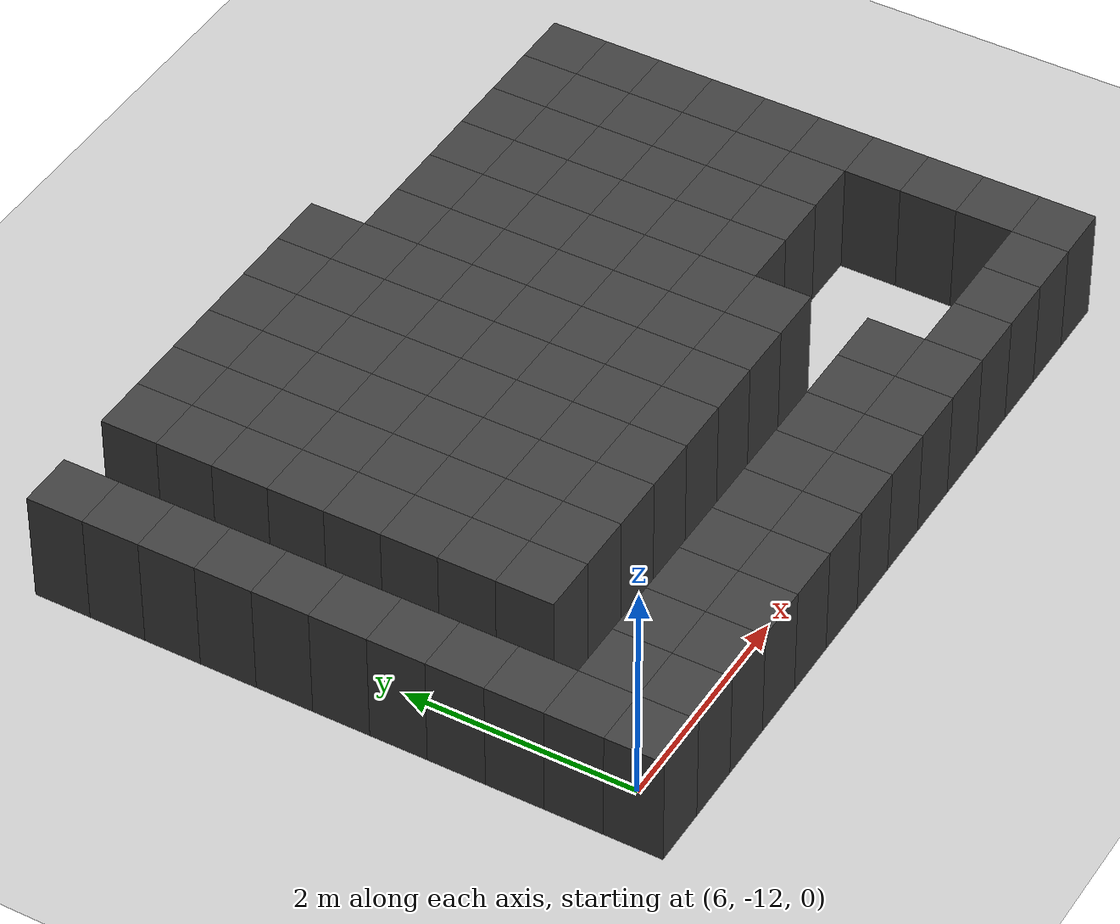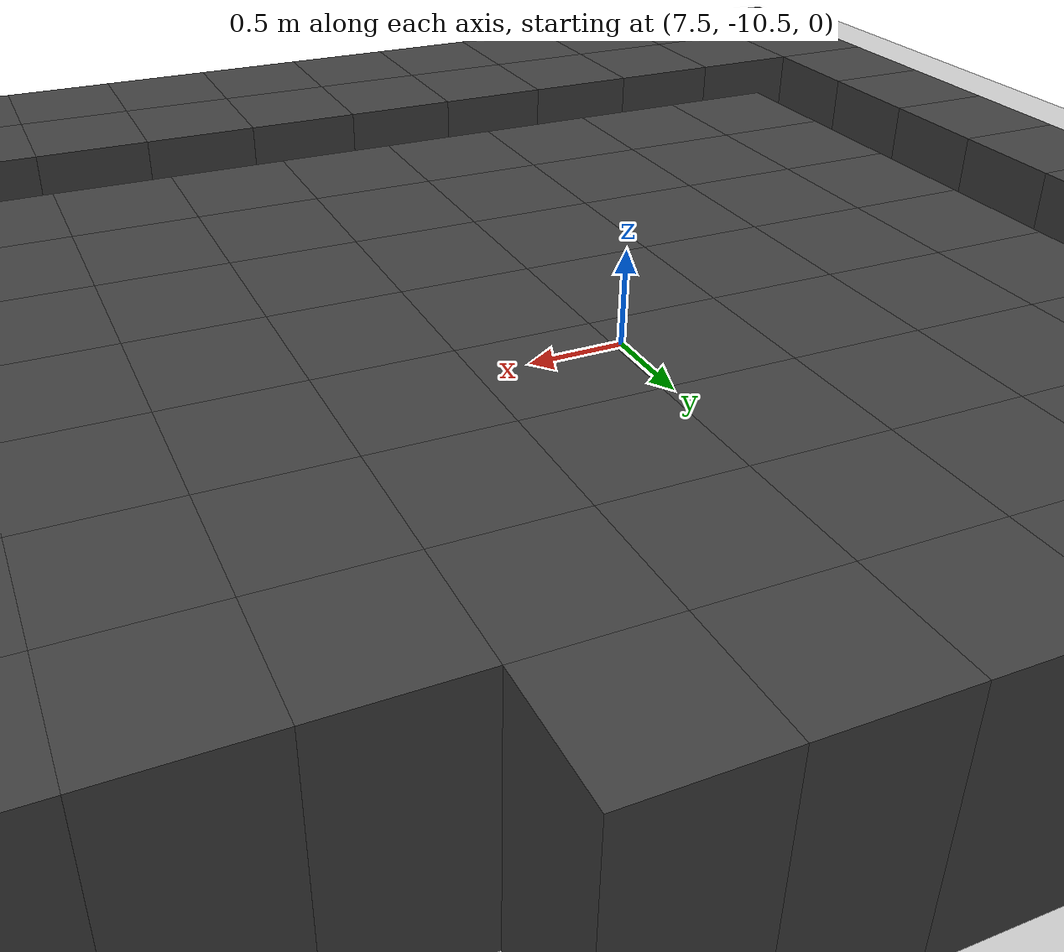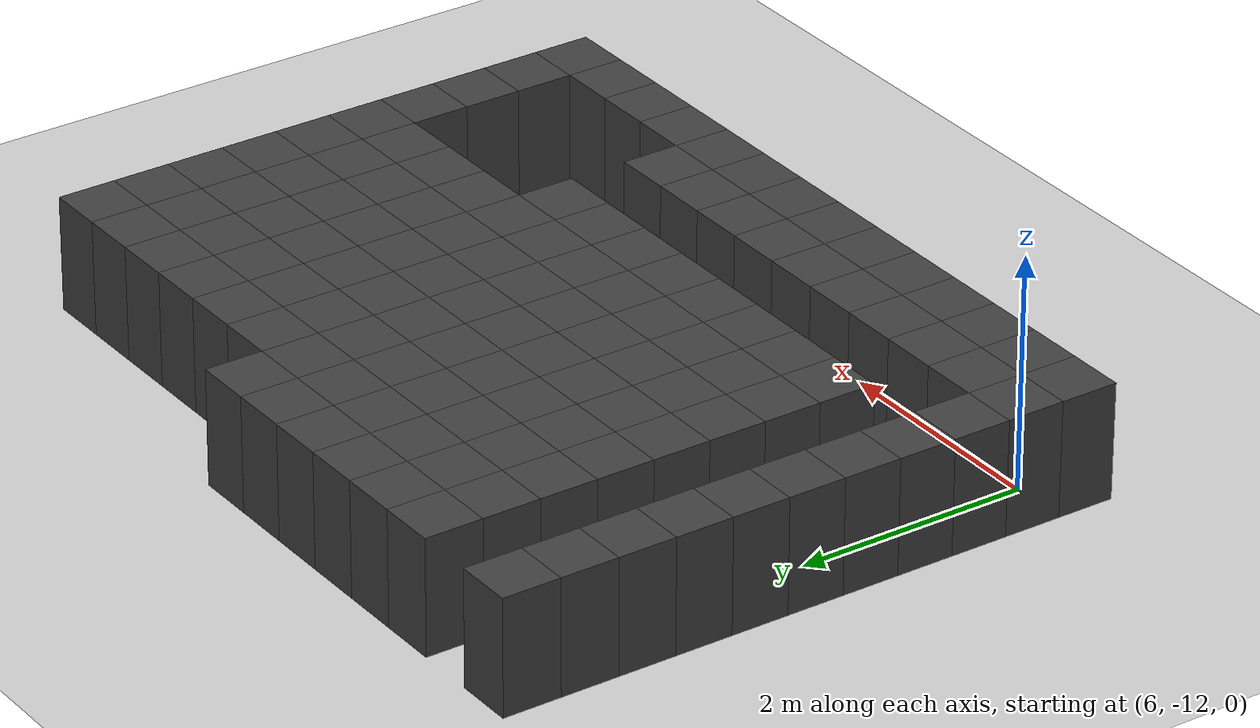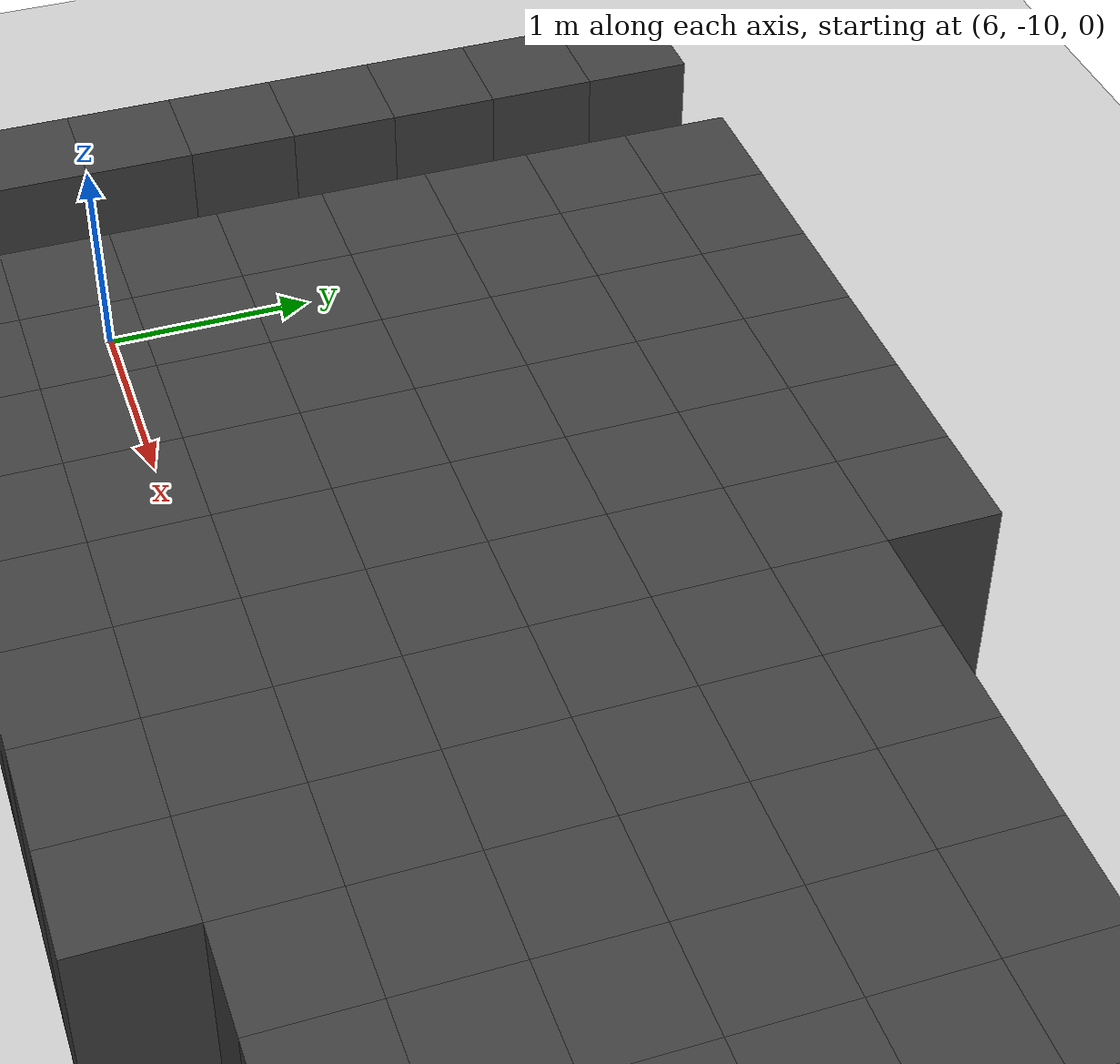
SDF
<sdf version="1.7">
 <world name="map_13820">
  <model name="ground_plane">
   <static>true</static>
   <link name="link">
    <collision name="collision">
     <geometry><plane><normal>0 0 1</normal><size>200 200</size></plane></geometry>
    </collision>
    <visual name="visual">
     <geometry><plane><normal>0 0 1</normal><size>200 200</size></plane></geometry>
     <material><ambient>0.8 0.8 0.8 1</ambient><diffuse>0.8 0.8 0.8 1</diffuse></material>
    </visual>
   </link>
  </model>
  <model name="maze_environment">
   <static>true</static>
   <link name="wall_1369">
    <pose>5.750 -7.250 0.500 0 0 0</pose>
    <collision name="col"><geometry><box><size>0.5 0.5 1.0</size></box></geometry></collision>
    <visual name="vis">
     <geometry><box><size>0.5 0.5 1.0</size></box></geometry>
     <material><ambient>0.15 0.15 0.15 1</ambient><diffuse>0.25 0.25 0.25 1</diffuse></material>
    </visual>
   </link>
   <link name="wall_1370">
    <pose>6.750 -7.250 0.500 0 0 0</pose>
    <collision name="col"><geometry><box><size>0.5 0.5 1.0</size></box></geometry></collision>
    <visual name="vis">
     <geometry><box><size>0.5 0.5 1.0</size></box></geometry>
     <material><ambient>0.15 0.15 0.15 1</ambient><diffuse>0.25 0.25 0.25 1</diffuse></material>
    </visual>
   </link>
   <link name="wall_1371">
    <pose>7.250 -7.250 0.500 0 0 0</pose>
    <collision name="col"><geometry><box><size>0.5 0.5 1.0</size></box></geometry></collision>
    <visual name="vis">
     <geometry><box><size>0.5 0.5 1.0</size></box></geometry>
     <material><ambient>0.15 0.15 0.15 1</ambient><diffuse>0.25 0.25 0.25 1</diffuse></material>
    </visual>
   </link>
   <link name="wall_1372">
    <pose>7.750 -7.250 0.500 0 0 0</pose>
    <collision name="col"><geometry><box><size>0.5 0.5 1.0</size></box></geometry></collision>
    <visual name="vis">
     <geometry><box><size>0.5 0.5 1.0</size></box></geometry>
     <material><ambient>0.15 0.15 0.15 1</ambient><diffuse>0.25 0.25 0.25 1</diffuse></material>
    </visual>
   </link>
   <link name="wall_1373">
    <pose>8.250 -7.250 0.500 0 0 0</pose>
    <collision name="col"><geometry><box><size>0.5 0.5 1.0</size></box></geometry></collision>
    <visual name="vis">
     <geometry><box><size>0.5 0.5 1.0</size></box></geometry>
     <material><ambient>0.15 0.15 0.15 1</ambient><diffuse>0.25 0.25 0.25 1</diffuse></material>
    </visual>
   </link>
   <link name="wall_1374">
    <pose>8.750 -7.250 0.500 0 0 0</pose>
    <collision name="col"><geometry><box><size>0.5 0.5 1.0</size></box></geometry></collision>
    <visual name="vis">
     <geometry><box><size>0.5 0.5 1.0</size></box></geometry>
     <material><ambient>0.15 0.15 0.15 1</ambient><diffuse>0.25 0.25 0.25 1</diffuse></material>
    </visual>
   </link>
   <link name="wall_1375">
    <pose>9.250 -7.250 0.500 0 0 0</pose>
    <collision name="col"><geometry><box><size>0.5 0.5 1.0</size></box></geometry></collision>
    <visual name="vis">
     <geometry><box><size>0.5 0.5 1.0</size></box></geometry>
     <material><ambient>0.15 0.15 0.15 1</ambient><diffuse>0.25 0.25 0.25 1</diffuse></material>
    </visual>
   </link>
   <link name="wall_1418">
    <pose>5.750 -7.750 0.500 0 0 0</pose>
    <collision name="col"><geometry><box><size>0.5 0.5 1.0</size></box></geometry></collision>
    <visual name="vis">
     <geometry><box><size>0.5 0.5 1.0</size></box></geometry>
     <material><ambient>0.15 0.15 0.15 1</ambient><diffuse>0.25 0.25 0.25 1</diffuse></material>
    </visual>
   </link>
   <link name="wall_1419">
    <pose>6.750 -7.750 0.500 0 0 0</pose>
    <collision name="col"><geometry><box><size>0.5 0.5 1.0</size></box></geometry></collision>
    <visual name="vis">
     <geometry><box><size>0.5 0.5 1.0</size></box></geometry>
     <material><ambient>0.15 0.15 0.15 1</ambient><diffuse>0.25 0.25 0.25 1</diffuse></material>
    </visual>
   </link>
   <link name="wall_1420">
    <pose>7.250 -7.750 0.500 0 0 0</pose>
    <collision name="col"><geometry><box><size>0.5 0.5 1.0</size></box></geometry></collision>
    <visual name="vis">
     <geometry><box><size>0.5 0.5 1.0</size></box></geometry>
     <material><ambient>0.15 0.15 0.15 1</ambient><diffuse>0.25 0.25 0.25 1</diffuse></material>
    </visual>
   </link>
   <link name="wall_1421">
    <pose>7.750 -7.750 0.500 0 0 0</pose>
    <collision name="col"><geometry><box><size>0.5 0.5 1.0</size></box></geometry></collision>
    <visual name="vis">
     <geometry><box><size>0.5 0.5 1.0</size></box></geometry>
     <material><ambient>0.15 0.15 0.15 1</ambient><diffuse>0.25 0.25 0.25 1</diffuse></material>
    </visual>
   </link>
   <link name="wall_1422">
    <pose>8.250 -7.750 0.500 0 0 0</pose>
    <collision name="col"><geometry><box><size>0.5 0.5 1.0</size></box></geometry></collision>
    <visual name="vis">
     <geometry><box><size>0.5 0.5 1.0</size></box></geometry>
     <material><ambient>0.15 0.15 0.15 1</ambient><diffuse>0.25 0.25 0.25 1</diffuse></material>
    </visual>
   </link>
   <link name="wall_1423">
    <pose>8.750 -7.750 0.500 0 0 0</pose>
    <collision name="col"><geometry><box><size>0.5 0.5 1.0</size></box></geometry></collision>
    <visual name="vis">
     <geometry><box><size>0.5 0.5 1.0</size></box></geometry>
     <material><ambient>0.15 0.15 0.15 1</ambient><diffuse>0.25 0.25 0.25 1</diffuse></material>
    </visual>
   </link>
   <link name="wall_1424">
    <pose>9.250 -7.750 0.500 0 0 0</pose>
    <collision name="col"><geometry><box><size>0.5 0.5 1.0</size></box></geometry></collision>
    <visual name="vis">
     <geometry><box><size>0.5 0.5 1.0</size></box></geometry>
     <material><ambient>0.15 0.15 0.15 1</ambient><diffuse>0.25 0.25 0.25 1</diffuse></material>
    </visual>
   </link>
   <link name="wall_1425">
    <pose>9.750 -7.750 0.500 0 0 0</pose>
    <collision name="col"><geometry><box><size>0.5 0.5 1.0</size></box></geometry></collision>
    <visual name="vis">
     <geometry><box><size>0.5 0.5 1.0</size></box></geometry>
     <material><ambient>0.15 0.15 0.15 1</ambient><diffuse>0.25 0.25 0.25 1</diffuse></material>
    </visual>
   </link>
   <link name="wall_1426">
    <pose>10.250 -7.750 0.500 0 0 0</pose>
    <collision name="col"><geometry><box><size>0.5 0.5 1.0</size></box></geometry></collision>
    <visual name="vis">
     <geometry><box><size>0.5 0.5 1.0</size></box></geometry>
     <material><ambient>0.15 0.15 0.15 1</ambient><diffuse>0.25 0.25 0.25 1</diffuse></material>
    </visual>
   </link>
   <link name="wall_1427">
    <pose>10.750 -7.750 0.500 0 0 0</pose>
    <collision name="col"><geometry><box><size>0.5 0.5 1.0</size></box></geometry></collision>
    <visual name="vis">
     <geometry><box><size>0.5 0.5 1.0</size></box></geometry>
     <material><ambient>0.15 0.15 0.15 1</ambient><diffuse>0.25 0.25 0.25 1</diffuse></material>
    </visual>
   </link>
   <link name="wall_1428">
    <pose>11.250 -7.750 0.500 0 0 0</pose>
    <collision name="col"><geometry><box><size>0.5 0.5 1.0</size></box></geometry></collision>
    <visual name="vis">
     <geometry><box><size>0.5 0.5 1.0</size></box></geometry>
     <material><ambient>0.15 0.15 0.15 1</ambient><diffuse>0.25 0.25 0.25 1</diffuse></material>
    </visual>
   </link>
   <link name="wall_1429">
    <pose>11.750 -7.750 0.500 0 0 0</pose>
    <collision name="col"><geometry><box><size>0.5 0.5 1.0</size></box></geometry></collision>
    <visual name="vis">
     <geometry><box><size>0.5 0.5 1.0</size></box></geometry>
     <material><ambient>0.15 0.15 0.15 1</ambient><diffuse>0.25 0.25 0.25 1</diffuse></material>
    </visual>
   </link>
   <link name="wall_1430">
    <pose>12.250 -7.750 0.500 0 0 0</pose>
    <collision name="col"><geometry><box><size>0.5 0.5 1.0</size></box></geometry></collision>
    <visual name="vis">
     <geometry><box><size>0.5 0.5 1.0</size></box></geometry>
     <material><ambient>0.15 0.15 0.15 1</ambient><diffuse>0.25 0.25 0.25 1</diffuse></material>
    </visual>
   </link>
   <link name="wall_1467">
    <pose>5.750 -8.250 0.500 0 0 0</pose>
    <collision name="col"><geometry><box><size>0.5 0.5 1.0</size></box></geometry></collision>
    <visual name="vis">
     <geometry><box><size>0.5 0.5 1.0</size></box></geometry>
     <material><ambient>0.15 0.15 0.15 1</ambient><diffuse>0.25 0.25 0.25 1</diffuse></material>
    </visual>
   </link>
   <link name="wall_1468">
    <pose>6.750 -8.250 0.500 0 0 0</pose>
    <collision name="col"><geometry><box><size>0.5 0.5 1.0</size></box></geometry></collision>
    <visual name="vis">
     <geometry><box><size>0.5 0.5 1.0</size></box></geometry>
     <material><ambient>0.15 0.15 0.15 1</ambient><diffuse>0.25 0.25 0.25 1</diffuse></material>
    </visual>
   </link>
   <link name="wall_1469">
    <pose>7.250 -8.250 0.500 0 0 0</pose>
    <collision name="col"><geometry><box><size>0.5 0.5 1.0</size></box></geometry></collision>
    <visual name="vis">
     <geometry><box><size>0.5 0.5 1.0</size></box></geometry>
     <material><ambient>0.15 0.15 0.15 1</ambient><diffuse>0.25 0.25 0.25 1</diffuse></material>
    </visual>
   </link>
   <link name="wall_1470">
    <pose>7.750 -8.250 0.500 0 0 0</pose>
    <collision name="col"><geometry><box><size>0.5 0.5 1.0</size></box></geometry></collision>
    <visual name="vis">
     <geometry><box><size>0.5 0.5 1.0</size></box></geometry>
     <material><ambient>0.15 0.15 0.15 1</ambient><diffuse>0.25 0.25 0.25 1</diffuse></material>
    </visual>
   </link>
   <link name="wall_1471">
    <pose>8.250 -8.250 0.500 0 0 0</pose>
    <collision name="col"><geometry><box><size>0.5 0.5 1.0</size></box></geometry></collision>
    <visual name="vis">
     <geometry><box><size>0.5 0.5 1.0</size></box></geometry>
     <material><ambient>0.15 0.15 0.15 1</ambient><diffuse>0.25 0.25 0.25 1</diffuse></material>
    </visual>
   </link>
   <link name="wall_1472">
    <pose>8.750 -8.250 0.500 0 0 0</pose>
    <collision name="col"><geometry><box><size>0.5 0.5 1.0</size></box></geometry></collision>
    <visual name="vis">
     <geometry><box><size>0.5 0.5 1.0</size></box></geometry>
     <material><ambient>0.15 0.15 0.15 1</ambient><diffuse>0.25 0.25 0.25 1</diffuse></material>
    </visual>
   </link>
   <link name="wall_1473">
    <pose>9.250 -8.250 0.500 0 0 0</pose>
    <collision name="col"><geometry><box><size>0.5 0.5 1.0</size></box></geometry></collision>
    <visual name="vis">
     <geometry><box><size>0.5 0.5 1.0</size></box></geometry>
     <material><ambient>0.15 0.15 0.15 1</ambient><diffuse>0.25 0.25 0.25 1</diffuse></material>
    </visual>
   </link>
   <link name="wall_1474">
    <pose>9.750 -8.250 0.500 0 0 0</pose>
    <collision name="col"><geometry><box><size>0.5 0.5 1.0</size></box></geometry></collision>
    <visual name="vis">
     <geometry><box><size>0.5 0.5 1.0</size></box></geometry>
     <material><ambient>0.15 0.15 0.15 1</ambient><diffuse>0.25 0.25 0.25 1</diffuse></material>
    </visual>
   </link>
   <link name="wall_1475">
    <pose>10.250 -8.250 0.500 0 0 0</pose>
    <collision name="col"><geometry><box><size>0.5 0.5 1.0</size></box></geometry></collision>
    <visual name="vis">
     <geometry><box><size>0.5 0.5 1.0</size></box></geometry>
     <material><ambient>0.15 0.15 0.15 1</ambient><diffuse>0.25 0.25 0.25 1</diffuse></material>
    </visual>
   </link>
   <link name="wall_1476">
    <pose>10.750 -8.250 0.500 0 0 0</pose>
    <collision name="col"><geometry><box><size>0.5 0.5 1.0</size></box></geometry></collision>
    <visual name="vis">
     <geometry><box><size>0.5 0.5 1.0</size></box></geometry>
     <material><ambient>0.15 0.15 0.15 1</ambient><diffuse>0.25 0.25 0.25 1</diffuse></material>
    </visual>
   </link>
   <link name="wall_1477">
    <pose>11.250 -8.250 0.500 0 0 0</pose>
    <collision name="col"><geometry><box><size>0.5 0.5 1.0</size></box></geometry></collision>
    <visual name="vis">
     <geometry><box><size>0.5 0.5 1.0</size></box></geometry>
     <material><ambient>0.15 0.15 0.15 1</ambient><diffuse>0.25 0.25 0.25 1</diffuse></material>
    </visual>
   </link>
   <link name="wall_1478">
    <pose>11.750 -8.250 0.500 0 0 0</pose>
    <collision name="col"><geometry><box><size>0.5 0.5 1.0</size></box></geometry></collision>
    <visual name="vis">
     <geometry><box><size>0.5 0.5 1.0</size></box></geometry>
     <material><ambient>0.15 0.15 0.15 1</ambient><diffuse>0.25 0.25 0.25 1</diffuse></material>
    </visual>
   </link>
   <link name="wall_1479">
    <pose>12.250 -8.250 0.500 0 0 0</pose>
    <collision name="col"><geometry><box><size>0.5 0.5 1.0</size></box></geometry></collision>
    <visual name="vis">
     <geometry><box><size>0.5 0.5 1.0</size></box></geometry>
     <material><ambient>0.15 0.15 0.15 1</ambient><diffuse>0.25 0.25 0.25 1</diffuse></material>
    </visual>
   </link>
   <link name="wall_1516">
    <pose>5.750 -8.750 0.500 0 0 0</pose>
    <collision name="col"><geometry><box><size>0.5 0.5 1.0</size></box></geometry></collision>
    <visual name="vis">
     <geometry><box><size>0.5 0.5 1.0</size></box></geometry>
     <material><ambient>0.15 0.15 0.15 1</ambient><diffuse>0.25 0.25 0.25 1</diffuse></material>
    </visual>
   </link>
   <link name="wall_1517">
    <pose>6.750 -8.750 0.500 0 0 0</pose>
    <collision name="col"><geometry><box><size>0.5 0.5 1.0</size></box></geometry></collision>
    <visual name="vis">
     <geometry><box><size>0.5 0.5 1.0</size></box></geometry>
     <material><ambient>0.15 0.15 0.15 1</ambient><diffuse>0.25 0.25 0.25 1</diffuse></material>
    </visual>
   </link>
   <link name="wall_1518">
    <pose>7.250 -8.750 0.500 0 0 0</pose>
    <collision name="col"><geometry><box><size>0.5 0.5 1.0</size></box></geometry></collision>
    <visual name="vis">
     <geometry><box><size>0.5 0.5 1.0</size></box></geometry>
     <material><ambient>0.15 0.15 0.15 1</ambient><diffuse>0.25 0.25 0.25 1</diffuse></material>
    </visual>
   </link>
   <link name="wall_1519">
    <pose>7.750 -8.750 0.500 0 0 0</pose>
    <collision name="col"><geometry><box><size>0.5 0.5 1.0</size></box></geometry></collision>
    <visual name="vis">
     <geometry><box><size>0.5 0.5 1.0</size></box></geometry>
     <material><ambient>0.15 0.15 0.15 1</ambient><diffuse>0.25 0.25 0.25 1</diffuse></material>
    </visual>
   </link>
   <link name="wall_1520">
    <pose>8.250 -8.750 0.500 0 0 0</pose>
    <collision name="col"><geometry><box><size>0.5 0.5 1.0</size></box></geometry></collision>
    <visual name="vis">
     <geometry><box><size>0.5 0.5 1.0</size></box></geometry>
     <material><ambient>0.15 0.15 0.15 1</ambient><diffuse>0.25 0.25 0.25 1</diffuse></material>
    </visual>
   </link>
   <link name="wall_1521">
    <pose>8.750 -8.750 0.500 0 0 0</pose>
    <collision name="col"><geometry><box><size>0.5 0.5 1.0</size></box></geometry></collision>
    <visual name="vis">
     <geometry><box><size>0.5 0.5 1.0</size></box></geometry>
     <material><ambient>0.15 0.15 0.15 1</ambient><diffuse>0.25 0.25 0.25 1</diffuse></material>
    </visual>
   </link>
   <link name="wall_1522">
    <pose>9.250 -8.750 0.500 0 0 0</pose>
    <collision name="col"><geometry><box><size>0.5 0.5 1.0</size></box></geometry></collision>
    <visual name="vis">
     <geometry><box><size>0.5 0.5 1.0</size></box></geometry>
     <material><ambient>0.15 0.15 0.15 1</ambient><diffuse>0.25 0.25 0.25 1</diffuse></material>
    </visual>
   </link>
   <link name="wall_1523">
    <pose>9.750 -8.750 0.500 0 0 0</pose>
    <collision name="col"><geometry><box><size>0.5 0.5 1.0</size></box></geometry></collision>
    <visual name="vis">
     <geometry><box><size>0.5 0.5 1.0</size></box></geometry>
     <material><ambient>0.15 0.15 0.15 1</ambient><diffuse>0.25 0.25 0.25 1</diffuse></material>
    </visual>
   </link>
   <link name="wall_1524">
    <pose>10.250 -8.750 0.500 0 0 0</pose>
    <collision name="col"><geometry><box><size>0.5 0.5 1.0</size></box></geometry></collision>
    <visual name="vis">
     <geometry><box><size>0.5 0.5 1.0</size></box></geometry>
     <material><ambient>0.15 0.15 0.15 1</ambient><diffuse>0.25 0.25 0.25 1</diffuse></material>
    </visual>
   </link>
   <link name="wall_1525">
    <pose>10.750 -8.750 0.500 0 0 0</pose>
    <collision name="col"><geometry><box><size>0.5 0.5 1.0</size></box></geometry></collision>
    <visual name="vis">
     <geometry><box><size>0.5 0.5 1.0</size></box></geometry>
     <material><ambient>0.15 0.15 0.15 1</ambient><diffuse>0.25 0.25 0.25 1</diffuse></material>
    </visual>
   </link>
   <link name="wall_1526">
    <pose>11.250 -8.750 0.500 0 0 0</pose>
    <collision name="col"><geometry><box><size>0.5 0.5 1.0</size></box></geometry></collision>
    <visual name="vis">
     <geometry><box><size>0.5 0.5 1.0</size></box></geometry>
     <material><ambient>0.15 0.15 0.15 1</ambient><diffuse>0.25 0.25 0.25 1</diffuse></material>
    </visual>
   </link>
   <link name="wall_1527">
    <pose>11.750 -8.750 0.500 0 0 0</pose>
    <collision name="col"><geometry><box><size>0.5 0.5 1.0</size></box></geometry></collision>
    <visual name="vis">
     <geometry><box><size>0.5 0.5 1.0</size></box></geometry>
     <material><ambient>0.15 0.15 0.15 1</ambient><diffuse>0.25 0.25 0.25 1</diffuse></material>
    </visual>
   </link>
   <link name="wall_1528">
    <pose>12.250 -8.750 0.500 0 0 0</pose>
    <collision name="col"><geometry><box><size>0.5 0.5 1.0</size></box></geometry></collision>
    <visual name="vis">
     <geometry><box><size>0.5 0.5 1.0</size></box></geometry>
     <material><ambient>0.15 0.15 0.15 1</ambient><diffuse>0.25 0.25 0.25 1</diffuse></material>
    </visual>
   </link>
   <link name="wall_1565">
    <pose>5.750 -9.250 0.500 0 0 0</pose>
    <collision name="col"><geometry><box><size>0.5 0.5 1.0</size></box></geometry></collision>
    <visual name="vis">
     <geometry><box><size>0.5 0.5 1.0</size></box></geometry>
     <material><ambient>0.15 0.15 0.15 1</ambient><diffuse>0.25 0.25 0.25 1</diffuse></material>
    </visual>
   </link>
   <link name="wall_1566">
    <pose>6.750 -9.250 0.500 0 0 0</pose>
    <collision name="col"><geometry><box><size>0.5 0.5 1.0</size></box></geometry></collision>
    <visual name="vis">
     <geometry><box><size>0.5 0.5 1.0</size></box></geometry>
     <material><ambient>0.15 0.15 0.15 1</ambient><diffuse>0.25 0.25 0.25 1</diffuse></material>
    </visual>
   </link>
   <link name="wall_1567">
    <pose>7.250 -9.250 0.500 0 0 0</pose>
    <collision name="col"><geometry><box><size>0.5 0.5 1.0</size></box></geometry></collision>
    <visual name="vis">
     <geometry><box><size>0.5 0.5 1.0</size></box></geometry>
     <material><ambient>0.15 0.15 0.15 1</ambient><diffuse>0.25 0.25 0.25 1</diffuse></material>
    </visual>
   </link>
   <link name="wall_1568">
    <pose>7.750 -9.250 0.500 0 0 0</pose>
    <collision name="col"><geometry><box><size>0.5 0.5 1.0</size></box></geometry></collision>
    <visual name="vis">
     <geometry><box><size>0.5 0.5 1.0</size></box></geometry>
     <material><ambient>0.15 0.15 0.15 1</ambient><diffuse>0.25 0.25 0.25 1</diffuse></material>
    </visual>
   </link>
   <link name="wall_1569">
    <pose>8.250 -9.250 0.500 0 0 0</pose>
    <collision name="col"><geometry><box><size>0.5 0.5 1.0</size></box></geometry></collision>
    <visual name="vis">
     <geometry><box><size>0.5 0.5 1.0</size></box></geometry>
     <material><ambient>0.15 0.15 0.15 1</ambient><diffuse>0.25 0.25 0.25 1</diffuse></material>
    </visual>
   </link>
   <link name="wall_1570">
    <pose>8.750 -9.250 0.500 0 0 0</pose>
    <collision name="col"><geometry><box><size>0.5 0.5 1.0</size></box></geometry></collision>
    <visual name="vis">
     <geometry><box><size>0.5 0.5 1.0</size></box></geometry>
     <material><ambient>0.15 0.15 0.15 1</ambient><diffuse>0.25 0.25 0.25 1</diffuse></material>
    </visual>
   </link>
   <link name="wall_1571">
    <pose>9.250 -9.250 0.500 0 0 0</pose>
    <collision name="col"><geometry><box><size>0.5 0.5 1.0</size></box></geometry></collision>
    <visual name="vis">
     <geometry><box><size>0.5 0.5 1.0</size></box></geometry>
     <material><ambient>0.15 0.15 0.15 1</ambient><diffuse>0.25 0.25 0.25 1</diffuse></material>
    </visual>
   </link>
   <link name="wall_1572">
    <pose>9.750 -9.250 0.500 0 0 0</pose>
    <collision name="col"><geometry><box><size>0.5 0.5 1.0</size></box></geometry></collision>
    <visual name="vis">
     <geometry><box><size>0.5 0.5 1.0</size></box></geometry>
     <material><ambient>0.15 0.15 0.15 1</ambient><diffuse>0.25 0.25 0.25 1</diffuse></material>
    </visual>
   </link>
   <link name="wall_1573">
    <pose>10.250 -9.250 0.500 0 0 0</pose>
    <collision name="col"><geometry><box><size>0.5 0.5 1.0</size></box></geometry></collision>
    <visual name="vis">
     <geometry><box><size>0.5 0.5 1.0</size></box></geometry>
     <material><ambient>0.15 0.15 0.15 1</ambient><diffuse>0.25 0.25 0.25 1</diffuse></material>
    </visual>
   </link>
   <link name="wall_1574">
    <pose>10.750 -9.250 0.500 0 0 0</pose>
    <collision name="col"><geometry><box><size>0.5 0.5 1.0</size></box></geometry></collision>
    <visual name="vis">
     <geometry><box><size>0.5 0.5 1.0</size></box></geometry>
     <material><ambient>0.15 0.15 0.15 1</ambient><diffuse>0.25 0.25 0.25 1</diffuse></material>
    </visual>
   </link>
   <link name="wall_1575">
    <pose>11.250 -9.250 0.500 0 0 0</pose>
    <collision name="col"><geometry><box><size>0.5 0.5 1.0</size></box></geometry></collision>
    <visual name="vis">
     <geometry><box><size>0.5 0.5 1.0</size></box></geometry>
     <material><ambient>0.15 0.15 0.15 1</ambient><diffuse>0.25 0.25 0.25 1</diffuse></material>
    </visual>
   </link>
   <link name="wall_1576">
    <pose>11.750 -9.250 0.500 0 0 0</pose>
    <collision name="col"><geometry><box><size>0.5 0.5 1.0</size></box></geometry></collision>
    <visual name="vis">
     <geometry><box><size>0.5 0.5 1.0</size></box></geometry>
     <material><ambient>0.15 0.15 0.15 1</ambient><diffuse>0.25 0.25 0.25 1</diffuse></material>
    </visual>
   </link>
   <link name="wall_1577">
    <pose>12.250 -9.250 0.500 0 0 0</pose>
    <collision name="col"><geometry><box><size>0.5 0.5 1.0</size></box></geometry></collision>
    <visual name="vis">
     <geometry><box><size>0.5 0.5 1.0</size></box></geometry>
     <material><ambient>0.15 0.15 0.15 1</ambient><diffuse>0.25 0.25 0.25 1</diffuse></material>
    </visual>
   </link>
   <link name="wall_1614">
    <pose>5.750 -9.750 0.500 0 0 0</pose>
    <collision name="col"><geometry><box><size>0.5 0.5 1.0</size></box></geometry></collision>
    <visual name="vis">
     <geometry><box><size>0.5 0.5 1.0</size></box></geometry>
     <material><ambient>0.15 0.15 0.15 1</ambient><diffuse>0.25 0.25 0.25 1</diffuse></material>
    </visual>
   </link>
   <link name="wall_1615">
    <pose>6.750 -9.750 0.500 0 0 0</pose>
    <collision name="col"><geometry><box><size>0.5 0.5 1.0</size></box></geometry></collision>
    <visual name="vis">
     <geometry><box><size>0.5 0.5 1.0</size></box></geometry>
     <material><ambient>0.15 0.15 0.15 1</ambient><diffuse>0.25 0.25 0.25 1</diffuse></material>
    </visual>
   </link>
   <link name="wall_1616">
    <pose>7.250 -9.750 0.500 0 0 0</pose>
    <collision name="col"><geometry><box><size>0.5 0.5 1.0</size></box></geometry></collision>
    <visual name="vis">
     <geometry><box><size>0.5 0.5 1.0</size></box></geometry>
     <material><ambient>0.15 0.15 0.15 1</ambient><diffuse>0.25 0.25 0.25 1</diffuse></material>
    </visual>
   </link>
   <link name="wall_1617">
    <pose>7.750 -9.750 0.500 0 0 0</pose>
    <collision name="col"><geometry><box><size>0.5 0.5 1.0</size></box></geometry></collision>
    <visual name="vis">
     <geometry><box><size>0.5 0.5 1.0</size></box></geometry>
     <material><ambient>0.15 0.15 0.15 1</ambient><diffuse>0.25 0.25 0.25 1</diffuse></material>
    </visual>
   </link>
   <link name="wall_1618">
    <pose>8.250 -9.750 0.500 0 0 0</pose>
    <collision name="col"><geometry><box><size>0.5 0.5 1.0</size></box></geometry></collision>
    <visual name="vis">
     <geometry><box><size>0.5 0.5 1.0</size></box></geometry>
     <material><ambient>0.15 0.15 0.15 1</ambient><diffuse>0.25 0.25 0.25 1</diffuse></material>
    </visual>
   </link>
   <link name="wall_1619">
    <pose>8.750 -9.750 0.500 0 0 0</pose>
    <collision name="col"><geometry><box><size>0.5 0.5 1.0</size></box></geometry></collision>
    <visual name="vis">
     <geometry><box><size>0.5 0.5 1.0</size></box></geometry>
     <material><ambient>0.15 0.15 0.15 1</ambient><diffuse>0.25 0.25 0.25 1</diffuse></material>
    </visual>
   </link>
   <link name="wall_1620">
    <pose>9.250 -9.750 0.500 0 0 0</pose>
    <collision name="col"><geometry><box><size>0.5 0.5 1.0</size></box></geometry></collision>
    <visual name="vis">
     <geometry><box><size>0.5 0.5 1.0</size></box></geometry>
     <material><ambient>0.15 0.15 0.15 1</ambient><diffuse>0.25 0.25 0.25 1</diffuse></material>
    </visual>
   </link>
   <link name="wall_1621">
    <pose>9.750 -9.750 0.500 0 0 0</pose>
    <collision name="col"><geometry><box><size>0.5 0.5 1.0</size></box></geometry></collision>
    <visual name="vis">
     <geometry><box><size>0.5 0.5 1.0</size></box></geometry>
     <material><ambient>0.15 0.15 0.15 1</ambient><diffuse>0.25 0.25 0.25 1</diffuse></material>
    </visual>
   </link>
   <link name="wall_1622">
    <pose>10.250 -9.750 0.500 0 0 0</pose>
    <collision name="col"><geometry><box><size>0.5 0.5 1.0</size></box></geometry></collision>
    <visual name="vis">
     <geometry><box><size>0.5 0.5 1.0</size></box></geometry>
     <material><ambient>0.15 0.15 0.15 1</ambient><diffuse>0.25 0.25 0.25 1</diffuse></material>
    </visual>
   </link>
   <link name="wall_1623">
    <pose>10.750 -9.750 0.500 0 0 0</pose>
    <collision name="col"><geometry><box><size>0.5 0.5 1.0</size></box></geometry></collision>
    <visual name="vis">
     <geometry><box><size>0.5 0.5 1.0</size></box></geometry>
     <material><ambient>0.15 0.15 0.15 1</ambient><diffuse>0.25 0.25 0.25 1</diffuse></material>
    </visual>
   </link>
   <link name="wall_1624">
    <pose>11.250 -9.750 0.500 0 0 0</pose>
    <collision name="col"><geometry><box><size>0.5 0.5 1.0</size></box></geometry></collision>
    <visual name="vis">
     <geometry><box><size>0.5 0.5 1.0</size></box></geometry>
     <material><ambient>0.15 0.15 0.15 1</ambient><diffuse>0.25 0.25 0.25 1</diffuse></material>
    </visual>
   </link>
   <link name="wall_1625">
    <pose>11.750 -9.750 0.500 0 0 0</pose>
    <collision name="col"><geometry><box><size>0.5 0.5 1.0</size></box></geometry></collision>
    <visual name="vis">
     <geometry><box><size>0.5 0.5 1.0</size></box></geometry>
     <material><ambient>0.15 0.15 0.15 1</ambient><diffuse>0.25 0.25 0.25 1</diffuse></material>
    </visual>
   </link>
   <link name="wall_1626">
    <pose>12.250 -9.750 0.500 0 0 0</pose>
    <collision name="col"><geometry><box><size>0.5 0.5 1.0</size></box></geometry></collision>
    <visual name="vis">
     <geometry><box><size>0.5 0.5 1.0</size></box></geometry>
     <material><ambient>0.15 0.15 0.15 1</ambient><diffuse>0.25 0.25 0.25 1</diffuse></material>
    </visual>
   </link>
   <link name="wall_1663">
    <pose>5.750 -10.250 0.500 0 0 0</pose>
    <collision name="col"><geometry><box><size>0.5 0.5 1.0</size></box></geometry></collision>
    <visual name="vis">
     <geometry><box><size>0.5 0.5 1.0</size></box></geometry>
     <material><ambient>0.15 0.15 0.15 1</ambient><diffuse>0.25 0.25 0.25 1</diffuse></material>
    </visual>
   </link>
   <link name="wall_1664">
    <pose>6.750 -10.250 0.500 0 0 0</pose>
    <collision name="col"><geometry><box><size>0.5 0.5 1.0</size></box></geometry></collision>
    <visual name="vis">
     <geometry><box><size>0.5 0.5 1.0</size></box></geometry>
     <material><ambient>0.15 0.15 0.15 1</ambient><diffuse>0.25 0.25 0.25 1</diffuse></material>
    </visual>
   </link>
   <link name="wall_1665">
    <pose>7.250 -10.250 0.500 0 0 0</pose>
    <collision name="col"><geometry><box><size>0.5 0.5 1.0</size></box></geometry></collision>
    <visual name="vis">
     <geometry><box><size>0.5 0.5 1.0</size></box></geometry>
     <material><ambient>0.15 0.15 0.15 1</ambient><diffuse>0.25 0.25 0.25 1</diffuse></material>
    </visual>
   </link>
   <link name="wall_1666">
    <pose>7.750 -10.250 0.500 0 0 0</pose>
    <collision name="col"><geometry><box><size>0.5 0.5 1.0</size></box></geometry></collision>
    <visual name="vis">
     <geometry><box><size>0.5 0.5 1.0</size></box></geometry>
     <material><ambient>0.15 0.15 0.15 1</ambient><diffuse>0.25 0.25 0.25 1</diffuse></material>
    </visual>
   </link>
   <link name="wall_1667">
    <pose>8.250 -10.250 0.500 0 0 0</pose>
    <collision name="col"><geometry><box><size>0.5 0.5 1.0</size></box></geometry></collision>
    <visual name="vis">
     <geometry><box><size>0.5 0.5 1.0</size></box></geometry>
     <material><ambient>0.15 0.15 0.15 1</ambient><diffuse>0.25 0.25 0.25 1</diffuse></material>
    </visual>
   </link>
   <link name="wall_1668">
    <pose>8.750 -10.250 0.500 0 0 0</pose>
    <collision name="col"><geometry><box><size>0.5 0.5 1.0</size></box></geometry></collision>
    <visual name="vis">
     <geometry><box><size>0.5 0.5 1.0</size></box></geometry>
     <material><ambient>0.15 0.15 0.15 1</ambient><diffuse>0.25 0.25 0.25 1</diffuse></material>
    </visual>
   </link>
   <link name="wall_1669">
    <pose>9.250 -10.250 0.500 0 0 0</pose>
    <collision name="col"><geometry><box><size>0.5 0.5 1.0</size></box></geometry></collision>
    <visual name="vis">
     <geometry><box><size>0.5 0.5 1.0</size></box></geometry>
     <material><ambient>0.15 0.15 0.15 1</ambient><diffuse>0.25 0.25 0.25 1</diffuse></material>
    </visual>
   </link>
   <link name="wall_1670">
    <pose>9.750 -10.250 0.500 0 0 0</pose>
    <collision name="col"><geometry><box><size>0.5 0.5 1.0</size></box></geometry></collision>
    <visual name="vis">
     <geometry><box><size>0.5 0.5 1.0</size></box></geometry>
     <material><ambient>0.15 0.15 0.15 1</ambient><diffuse>0.25 0.25 0.25 1</diffuse></material>
    </visual>
   </link>
   <link name="wall_1671">
    <pose>10.250 -10.250 0.500 0 0 0</pose>
    <collision name="col"><geometry><box><size>0.5 0.5 1.0</size></box></geometry></collision>
    <visual name="vis">
     <geometry><box><size>0.5 0.5 1.0</size></box></geometry>
     <material><ambient>0.15 0.15 0.15 1</ambient><diffuse>0.25 0.25 0.25 1</diffuse></material>
    </visual>
   </link>
   <link name="wall_1672">
    <pose>10.750 -10.250 0.500 0 0 0</pose>
    <collision name="col"><geometry><box><size>0.5 0.5 1.0</size></box></geometry></collision>
    <visual name="vis">
     <geometry><box><size>0.5 0.5 1.0</size></box></geometry>
     <material><ambient>0.15 0.15 0.15 1</ambient><diffuse>0.25 0.25 0.25 1</diffuse></material>
    </visual>
   </link>
   <link name="wall_1673">
    <pose>11.250 -10.250 0.500 0 0 0</pose>
    <collision name="col"><geometry><box><size>0.5 0.5 1.0</size></box></geometry></collision>
    <visual name="vis">
     <geometry><box><size>0.5 0.5 1.0</size></box></geometry>
     <material><ambient>0.15 0.15 0.15 1</ambient><diffuse>0.25 0.25 0.25 1</diffuse></material>
    </visual>
   </link>
   <link name="wall_1674">
    <pose>11.750 -10.250 0.500 0 0 0</pose>
    <collision name="col"><geometry><box><size>0.5 0.5 1.0</size></box></geometry></collision>
    <visual name="vis">
     <geometry><box><size>0.5 0.5 1.0</size></box></geometry>
     <material><ambient>0.15 0.15 0.15 1</ambient><diffuse>0.25 0.25 0.25 1</diffuse></material>
    </visual>
   </link>
   <link name="wall_1675">
    <pose>12.250 -10.250 0.500 0 0 0</pose>
    <collision name="col"><geometry><box><size>0.5 0.5 1.0</size></box></geometry></collision>
    <visual name="vis">
     <geometry><box><size>0.5 0.5 1.0</size></box></geometry>
     <material><ambient>0.15 0.15 0.15 1</ambient><diffuse>0.25 0.25 0.25 1</diffuse></material>
    </visual>
   </link>
   <link name="wall_1712">
    <pose>5.750 -10.750 0.500 0 0 0</pose>
    <collision name="col"><geometry><box><size>0.5 0.5 1.0</size></box></geometry></collision>
    <visual name="vis">
     <geometry><box><size>0.5 0.5 1.0</size></box></geometry>
     <material><ambient>0.15 0.15 0.15 1</ambient><diffuse>0.25 0.25 0.25 1</diffuse></material>
    </visual>
   </link>
   <link name="wall_1713">
    <pose>6.750 -10.750 0.500 0 0 0</pose>
    <collision name="col"><geometry><box><size>0.5 0.5 1.0</size></box></geometry></collision>
    <visual name="vis">
     <geometry><box><size>0.5 0.5 1.0</size></box></geometry>
     <material><ambient>0.15 0.15 0.15 1</ambient><diffuse>0.25 0.25 0.25 1</diffuse></material>
    </visual>
   </link>
   <link name="wall_1714">
    <pose>7.250 -10.750 0.500 0 0 0</pose>
    <collision name="col"><geometry><box><size>0.5 0.5 1.0</size></box></geometry></collision>
    <visual name="vis">
     <geometry><box><size>0.5 0.5 1.0</size></box></geometry>
     <material><ambient>0.15 0.15 0.15 1</ambient><diffuse>0.25 0.25 0.25 1</diffuse></material>
    </visual>
   </link>
   <link name="wall_1715">
    <pose>7.750 -10.750 0.500 0 0 0</pose>
    <collision name="col"><geometry><box><size>0.5 0.5 1.0</size></box></geometry></collision>
    <visual name="vis">
     <geometry><box><size>0.5 0.5 1.0</size></box></geometry>
     <material><ambient>0.15 0.15 0.15 1</ambient><diffuse>0.25 0.25 0.25 1</diffuse></material>
    </visual>
   </link>
   <link name="wall_1716">
    <pose>8.250 -10.750 0.500 0 0 0</pose>
    <collision name="col"><geometry><box><size>0.5 0.5 1.0</size></box></geometry></collision>
    <visual name="vis">
     <geometry><box><size>0.5 0.5 1.0</size></box></geometry>
     <material><ambient>0.15 0.15 0.15 1</ambient><diffuse>0.25 0.25 0.25 1</diffuse></material>
    </visual>
   </link>
   <link name="wall_1717">
    <pose>8.750 -10.750 0.500 0 0 0</pose>
    <collision name="col"><geometry><box><size>0.5 0.5 1.0</size></box></geometry></collision>
    <visual name="vis">
     <geometry><box><size>0.5 0.5 1.0</size></box></geometry>
     <material><ambient>0.15 0.15 0.15 1</ambient><diffuse>0.25 0.25 0.25 1</diffuse></material>
    </visual>
   </link>
   <link name="wall_1718">
    <pose>9.250 -10.750 0.500 0 0 0</pose>
    <collision name="col"><geometry><box><size>0.5 0.5 1.0</size></box></geometry></collision>
    <visual name="vis">
     <geometry><box><size>0.5 0.5 1.0</size></box></geometry>
     <material><ambient>0.15 0.15 0.15 1</ambient><diffuse>0.25 0.25 0.25 1</diffuse></material>
    </visual>
   </link>
   <link name="wall_1719">
    <pose>9.750 -10.750 0.500 0 0 0</pose>
    <collision name="col"><geometry><box><size>0.5 0.5 1.0</size></box></geometry></collision>
    <visual name="vis">
     <geometry><box><size>0.5 0.5 1.0</size></box></geometry>
     <material><ambient>0.15 0.15 0.15 1</ambient><diffuse>0.25 0.25 0.25 1</diffuse></material>
    </visual>
   </link>
   <link name="wall_1720">
    <pose>10.250 -10.750 0.500 0 0 0</pose>
    <collision name="col"><geometry><box><size>0.5 0.5 1.0</size></box></geometry></collision>
    <visual name="vis">
     <geometry><box><size>0.5 0.5 1.0</size></box></geometry>
     <material><ambient>0.15 0.15 0.15 1</ambient><diffuse>0.25 0.25 0.25 1</diffuse></material>
    </visual>
   </link>
   <link name="wall_1721">
    <pose>12.250 -10.750 0.500 0 0 0</pose>
    <collision name="col"><geometry><box><size>0.5 0.5 1.0</size></box></geometry></collision>
    <visual name="vis">
     <geometry><box><size>0.5 0.5 1.0</size></box></geometry>
     <material><ambient>0.15 0.15 0.15 1</ambient><diffuse>0.25 0.25 0.25 1</diffuse></material>
    </visual>
   </link>
   <link name="wall_1758">
    <pose>5.750 -11.250 0.500 0 0 0</pose>
    <collision name="col"><geometry><box><size>0.5 0.5 1.0</size></box></geometry></collision>
    <visual name="vis">
     <geometry><box><size>0.5 0.5 1.0</size></box></geometry>
     <material><ambient>0.15 0.15 0.15 1</ambient><diffuse>0.25 0.25 0.25 1</diffuse></material>
    </visual>
   </link>
   <link name="wall_1759">
    <pose>12.250 -11.250 0.500 0 0 0</pose>
    <collision name="col"><geometry><box><size>0.5 0.5 1.0</size></box></geometry></collision>
    <visual name="vis">
     <geometry><box><size>0.5 0.5 1.0</size></box></geometry>
     <material><ambient>0.15 0.15 0.15 1</ambient><diffuse>0.25 0.25 0.25 1</diffuse></material>
    </visual>
   </link>
   <link name="wall_1796">
    <pose>5.750 -11.750 0.500 0 0 0</pose>
    <collision name="col"><geometry><box><size>0.5 0.5 1.0</size></box></geometry></collision>
    <visual name="vis">
     <geometry><box><size>0.5 0.5 1.0</size></box></geometry>
     <material><ambient>0.15 0.15 0.15 1</ambient><diffuse>0.25 0.25 0.25 1</diffuse></material>
    </visual>
   </link>
   <link name="wall_1797">
    <pose>6.250 -11.750 0.500 0 0 0</pose>
    <collision name="col"><geometry><box><size>0.5 0.5 1.0</size></box></geometry></collision>
    <visual name="vis">
     <geometry><box><size>0.5 0.5 1.0</size></box></geometry>
     <material><ambient>0.15 0.15 0.15 1</ambient><diffuse>0.25 0.25 0.25 1</diffuse></material>
    </visual>
   </link>
   <link name="wall_1798">
    <pose>6.750 -11.750 0.500 0 0 0</pose>
    <collision name="col"><geometry><box><size>0.5 0.5 1.0</size></box></geometry></collision>
    <visual name="vis">
     <geometry><box><size>0.5 0.5 1.0</size></box></geometry>
     <material><ambient>0.15 0.15 0.15 1</ambient><diffuse>0.25 0.25 0.25 1</diffuse></material>
    </visual>
   </link>
   <link name="wall_1799">
    <pose>7.250 -11.750 0.500 0 0 0</pose>
    <collision name="col"><geometry><box><size>0.5 0.5 1.0</size></box></geometry></collision>
    <visual name="vis">
     <geometry><box><size>0.5 0.5 1.0</size></box></geometry>
     <material><ambient>0.15 0.15 0.15 1</ambient><diffuse>0.25 0.25 0.25 1</diffuse></material>
    </visual>
   </link>
   <link name="wall_1800">
    <pose>7.750 -11.750 0.500 0 0 0</pose>
    <collision name="col"><geometry><box><size>0.5 0.5 1.0</size></box></geometry></collision>
    <visual name="vis">
     <geometry><box><size>0.5 0.5 1.0</size></box></geometry>
     <material><ambient>0.15 0.15 0.15 1</ambient><diffuse>0.25 0.25 0.25 1</diffuse></material>
    </visual>
   </link>
   <link name="wall_1801">
    <pose>8.250 -11.750 0.500 0 0 0</pose>
    <collision name="col"><geometry><box><size>0.5 0.5 1.0</size></box></geometry></collision>
    <visual name="vis">
     <geometry><box><size>0.5 0.5 1.0</size></box></geometry>
     <material><ambient>0.15 0.15 0.15 1</ambient><diffuse>0.25 0.25 0.25 1</diffuse></material>
    </visual>
   </link>
   <link name="wall_1802">
    <pose>8.750 -11.750 0.500 0 0 0</pose>
    <collision name="col"><geometry><box><size>0.5 0.5 1.0</size></box></geometry></collision>
    <visual name="vis">
     <geometry><box><size>0.5 0.5 1.0</size></box></geometry>
     <material><ambient>0.15 0.15 0.15 1</ambient><diffuse>0.25 0.25 0.25 1</diffuse></material>
    </visual>
   </link>
   <link name="wall_1803">
    <pose>9.250 -11.750 0.500 0 0 0</pose>
    <collision name="col"><geometry><box><size>0.5 0.5 1.0</size></box></geometry></collision>
    <visual name="vis">
     <geometry><box><size>0.5 0.5 1.0</size></box></geometry>
     <material><ambient>0.15 0.15 0.15 1</ambient><diffuse>0.25 0.25 0.25 1</diffuse></material>
    </visual>
   </link>
   <link name="wall_1804">
    <pose>9.750 -11.750 0.500 0 0 0</pose>
    <collision name="col"><geometry><box><size>0.5 0.5 1.0</size></box></geometry></collision>
    <visual name="vis">
     <geometry><box><size>0.5 0.5 1.0</size></box></geometry>
     <material><ambient>0.15 0.15 0.15 1</ambient><diffuse>0.25 0.25 0.25 1</diffuse></material>
    </visual>
   </link>
   <link name="wall_1805">
    <pose>10.250 -11.750 0.500 0 0 0</pose>
    <collision name="col"><geometry><box><size>0.5 0.5 1.0</size></box></geometry></collision>
    <visual name="vis">
     <geometry><box><size>0.5 0.5 1.0</size></box></geometry>
     <material><ambient>0.15 0.15 0.15 1</ambient><diffuse>0.25 0.25 0.25 1</diffuse></material>
    </visual>
   </link>
   <link name="wall_1806">
    <pose>12.250 -11.750 0.500 0 0 0</pose>
    <collision name="col"><geometry><box><size>0.5 0.5 1.0</size></box></geometry></collision>
    <visual name="vis">
     <geometry><box><size>0.5 0.5 1.0</size></box></geometry>
     <material><ambient>0.15 0.15 0.15 1</ambient><diffuse>0.25 0.25 0.25 1</diffuse></material>
    </visual>
   </link>
   <link name="wall_1843">
    <pose>5.750 -12.250 0.500 0 0 0</pose>
    <collision name="col"><geometry><box><size>0.5 0.5 1.0</size></box></geometry></collision>
    <visual name="vis">
     <geometry><box><size>0.5 0.5 1.0</size></box></geometry>
     <material><ambient>0.15 0.15 0.15 1</ambient><diffuse>0.25 0.25 0.25 1</diffuse></material>
    </visual>
   </link>
   <link name="wall_1844">
    <pose>6.250 -12.250 0.500 0 0 0</pose>
    <collision name="col"><geometry><box><size>0.5 0.5 1.0</size></box></geometry></collision>
    <visual name="vis">
     <geometry><box><size>0.5 0.5 1.0</size></box></geometry>
     <material><ambient>0.15 0.15 0.15 1</ambient><diffuse>0.25 0.25 0.25 1</diffuse></material>
    </visual>
   </link>
   <link name="wall_1845">
    <pose>6.750 -12.250 0.500 0 0 0</pose>
    <collision name="col"><geometry><box><size>0.5 0.5 1.0</size></box></geometry></collision>
    <visual name="vis">
     <geometry><box><size>0.5 0.5 1.0</size></box></geometry>
     <material><ambient>0.15 0.15 0.15 1</ambient><diffuse>0.25 0.25 0.25 1</diffuse></material>
    </visual>
   </link>
   <link name="wall_1846">
    <pose>7.250 -12.250 0.500 0 0 0</pose>
    <collision name="col"><geometry><box><size>0.5 0.5 1.0</size></box></geometry></collision>
    <visual name="vis">
     <geometry><box><size>0.5 0.5 1.0</size></box></geometry>
     <material><ambient>0.15 0.15 0.15 1</ambient><diffuse>0.25 0.25 0.25 1</diffuse></material>
    </visual>
   </link>
   <link name="wall_1847">
    <pose>7.750 -12.250 0.500 0 0 0</pose>
    <collision name="col"><geometry><box><size>0.5 0.5 1.0</size></box></geometry></collision>
    <visual name="vis">
     <geometry><box><size>0.5 0.5 1.0</size></box></geometry>
     <material><ambient>0.15 0.15 0.15 1</ambient><diffuse>0.25 0.25 0.25 1</diffuse></material>
    </visual>
   </link>
   <link name="wall_1848">
    <pose>8.250 -12.250 0.500 0 0 0</pose>
    <collision name="col"><geometry><box><size>0.5 0.5 1.0</size></box></geometry></collision>
    <visual name="vis">
     <geometry><box><size>0.5 0.5 1.0</size></box></geometry>
     <material><ambient>0.15 0.15 0.15 1</ambient><diffuse>0.25 0.25 0.25 1</diffuse></material>
    </visual>
   </link>
   <link name="wall_1849">
    <pose>8.750 -12.250 0.500 0 0 0</pose>
    <collision name="col"><geometry><box><size>0.5 0.5 1.0</size></box></geometry></collision>
    <visual name="vis">
     <geometry><box><size>0.5 0.5 1.0</size></box></geometry>
     <material><ambient>0.15 0.15 0.15 1</ambient><diffuse>0.25 0.25 0.25 1</diffuse></material>
    </visual>
   </link>
   <link name="wall_1850">
    <pose>9.250 -12.250 0.500 0 0 0</pose>
    <collision name="col"><geometry><box><size>0.5 0.5 1.0</size></box></geometry></collision>
    <visual name="vis">
     <geometry><box><size>0.5 0.5 1.0</size></box></geometry>
     <material><ambient>0.15 0.15 0.15 1</ambient><diffuse>0.25 0.25 0.25 1</diffuse></material>
    </visual>
   </link>
   <link name="wall_1851">
    <pose>9.750 -12.250 0.500 0 0 0</pose>
    <collision name="col"><geometry><box><size>0.5 0.5 1.0</size></box></geometry></collision>
    <visual name="vis">
     <geometry><box><size>0.5 0.5 1.0</size></box></geometry>
     <material><ambient>0.15 0.15 0.15 1</ambient><diffuse>0.25 0.25 0.25 1</diffuse></material>
    </visual>
   </link>
   <link name="wall_1852">
    <pose>10.250 -12.250 0.500 0 0 0</pose>
    <collision name="col"><geometry><box><size>0.5 0.5 1.0</size></box></geometry></collision>
    <visual name="vis">
     <geometry><box><size>0.5 0.5 1.0</size></box></geometry>
     <material><ambient>0.15 0.15 0.15 1</ambient><diffuse>0.25 0.25 0.25 1</diffuse></material>
    </visual>
   </link>
   <link name="wall_1853">
    <pose>10.750 -12.250 0.500 0 0 0</pose>
    <collision name="col"><geometry><box><size>0.5 0.5 1.0</size></box></geometry></collision>
    <visual name="vis">
     <geometry><box><size>0.5 0.5 1.0</size></box></geometry>
     <material><ambient>0.15 0.15 0.15 1</ambient><diffuse>0.25 0.25 0.25 1</diffuse></material>
    </visual>
   </link>
   <link name="wall_1854">
    <pose>11.250 -12.250 0.500 0 0 0</pose>
    <collision name="col"><geometry><box><size>0.5 0.5 1.0</size></box></geometry></collision>
    <visual name="vis">
     <geometry><box><size>0.5 0.5 1.0</size></box></geometry>
     <material><ambient>0.15 0.15 0.15 1</ambient><diffuse>0.25 0.25 0.25 1</diffuse></material>
    </visual>
   </link>
   <link name="wall_1855">
    <pose>11.750 -12.250 0.500 0 0 0</pose>
    <collision name="col"><geometry><box><size>0.5 0.5 1.0</size></box></geometry></collision>
    <visual name="vis">
     <geometry><box><size>0.5 0.5 1.0</size></box></geometry>
     <material><ambient>0.15 0.15 0.15 1</ambient><diffuse>0.25 0.25 0.25 1</diffuse></material>
    </visual>
   </link>
   <link name="wall_1856">
    <pose>12.250 -12.250 0.500 0 0 0</pose>
    <collision name="col"><geometry><box><size>0.5 0.5 1.0</size></box></geometry></collision>
    <visual name="vis">
     <geometry><box><size>0.5 0.5 1.0</size></box></geometry>
     <material><ambient>0.15 0.15 0.15 1</ambient><diffuse>0.25 0.25 0.25 1</diffuse></material>
    </visual>
   </link>
   <link name="goal_zone">
    <pose>11.750 -11.750 0.005 0 0 0</pose>
    <visual name="vis">
     <geometry><box><size>0.45 0.45 0.01</size></box></geometry>
     <material>
      <ambient>1.0 0.0 0.0 1</ambient>
      <diffuse>1.0 0.0 0.0 1</diffuse>
      <emissive>0.60 0.00 0.00 1</emissive>
     </material>
    </visual>
   </link>
  </model>
 </world>
</sdf>
